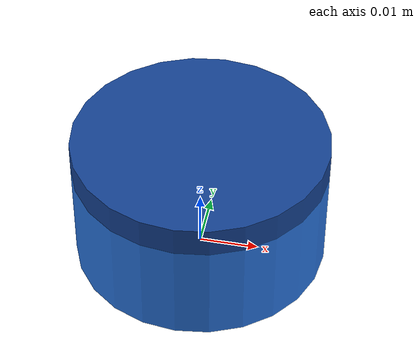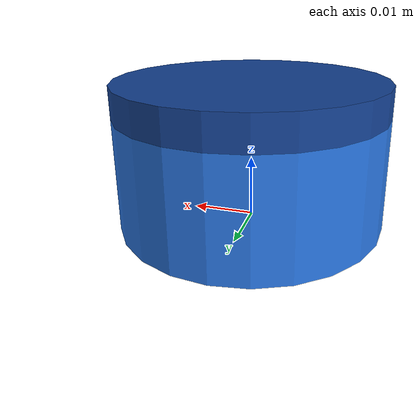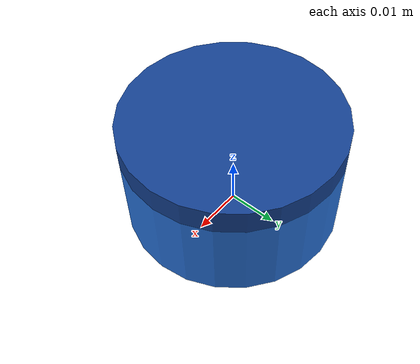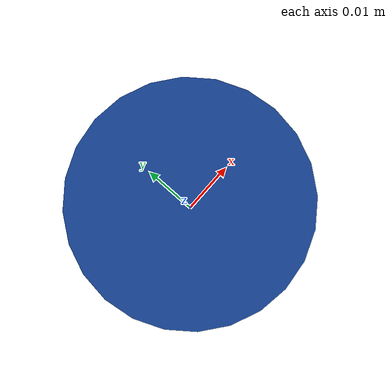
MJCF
<mujoco model="bottle_cap">
  <asset>
    <material name="cap_blue" rgba="0.16 0.46 0.88 1" specular="0.10" shininess="0.06" />
    <material name="cap_ridge" rgba="0.08 0.26 0.58 1" specular="0.08" shininess="0.05" />
    <material name="collision_invisible" rgba="0.8 0.8 0.8 0" />
  </asset>
  <worldbody>
    <body>
      <body name="object">
        <geom name="cap_top_collision" type="box" pos="0 0 0.018" size="0.0215 0.0215 0.0025"
              material="collision_invisible" group="0"
              density="900" friction="3.00 1.20 0.10"
              solimp="0.995 0.995 0.001" solref="0.012 1" />
        <geom name="cap_left_wall_collision" type="box" pos="-0.0195 0 0.008" size="0.0015 0.0195 0.008"
              material="collision_invisible" group="0"
              density="900" friction="3.00 1.20 0.10"
              solimp="0.995 0.995 0.001" solref="0.012 1" />
        <geom name="cap_right_wall_collision" type="box" pos="0.0195 0 0.008" size="0.0015 0.0195 0.008"
              material="collision_invisible" group="0"
              density="900" friction="3.00 1.20 0.10"
              solimp="0.995 0.995 0.001" solref="0.012 1" />
        <geom name="cap_front_wall_collision" type="box" pos="0 -0.0195 0.008" size="0.0195 0.0015 0.008"
              material="collision_invisible" group="0"
              density="900" friction="3.00 1.20 0.10"
              solimp="0.995 0.995 0.001" solref="0.012 1" />
        <geom name="cap_back_wall_collision" type="box" pos="0 0.0195 0.008" size="0.0195 0.0015 0.008"
              material="collision_invisible" group="0"
              density="900" friction="3.00 1.20 0.10"
              solimp="0.995 0.995 0.001" solref="0.012 1" />
        <geom name="cap_body_visual" type="cylinder" pos="0 0 0.009" size="0.0215 0.009"
              material="cap_blue" group="1" contype="0" conaffinity="0" />
        <geom name="cap_top_visual" type="cylinder" pos="0 0 0.0205" size="0.0215 0.0025"
              material="cap_ridge" group="1" contype="0" conaffinity="0" />
        <geom name="cap_inner_hole_visual" type="cylinder" pos="0 0 0.001" size="0.019 0.0008"
              rgba="0.02 0.05 0.09 1" group="1" contype="0" conaffinity="0" />
      </body>
      <site name="bottom_site" pos="0 0 0.000" quat="1 0 0 0" size="0.004" rgba="0 0 0 0"/>
      <site name="top_site" pos="0 0 0.023" quat="1 0 0 0" size="0.004" rgba="0 0 0 0"/>
      <site name="horizontal_radius_site" pos="0.0225 0.000 0.009" quat="1 0 0 0" size="0.004" rgba="0 0 0 0"/>
    </body>
  </worldbody>
</mujoco>
